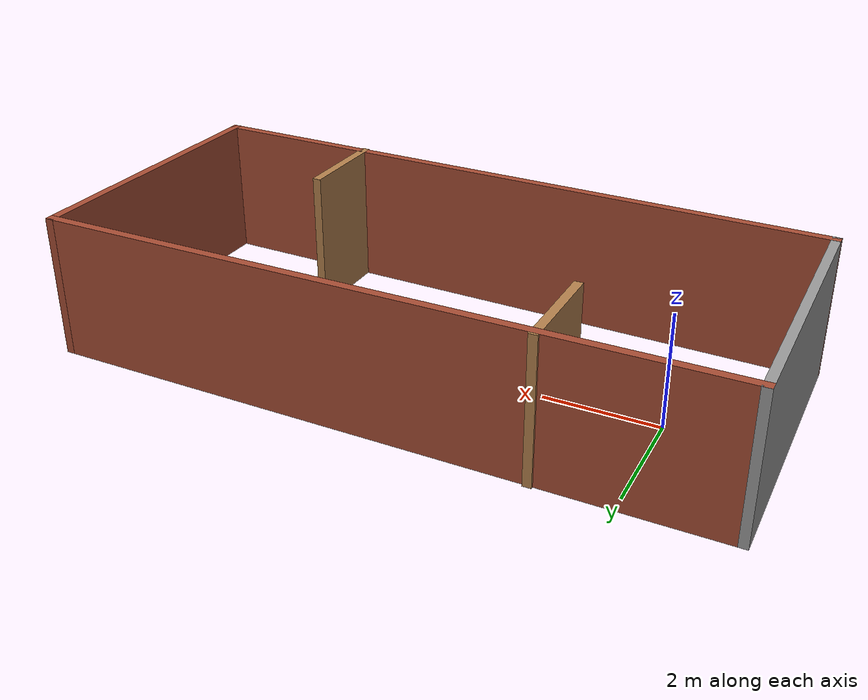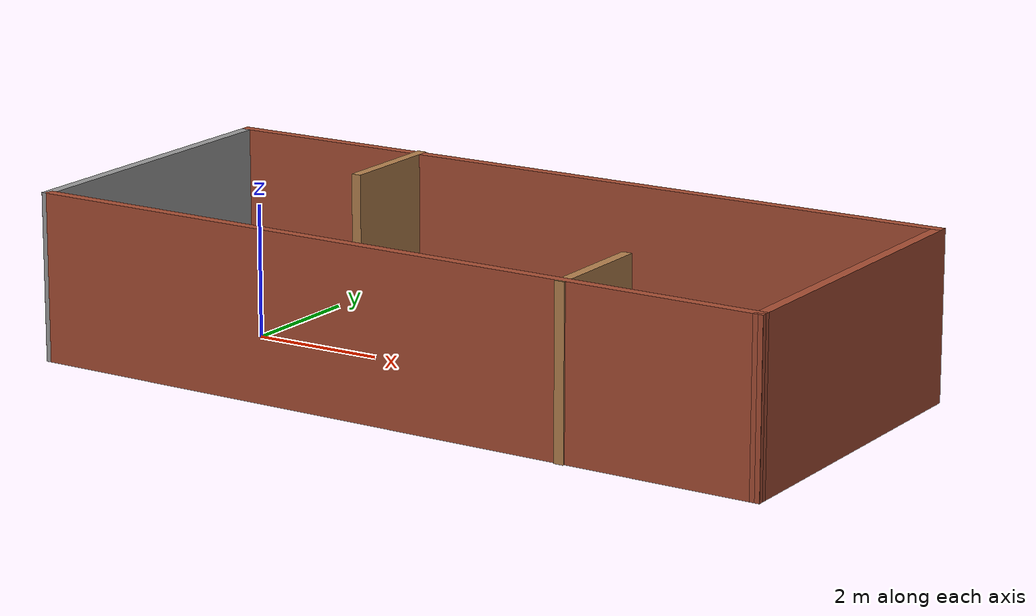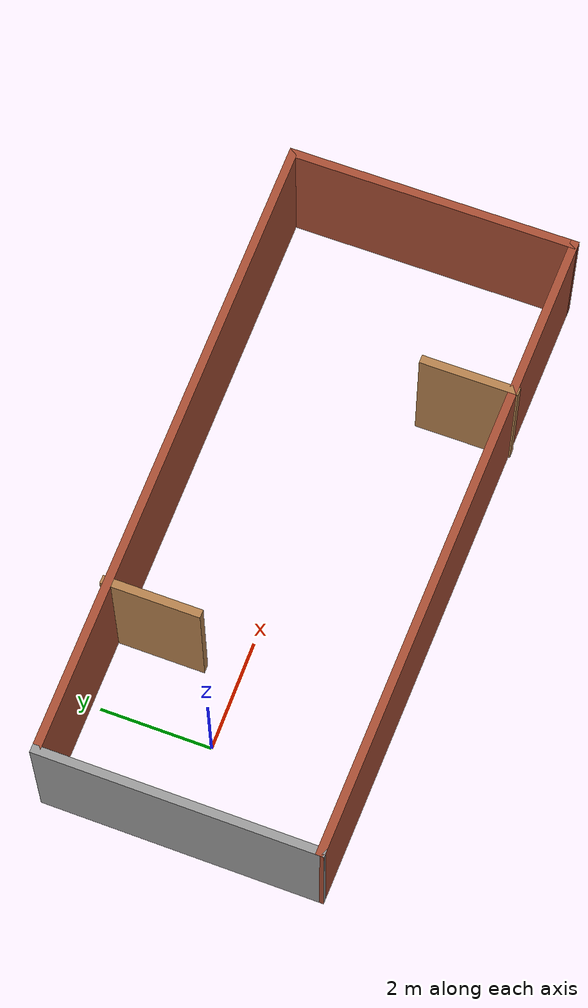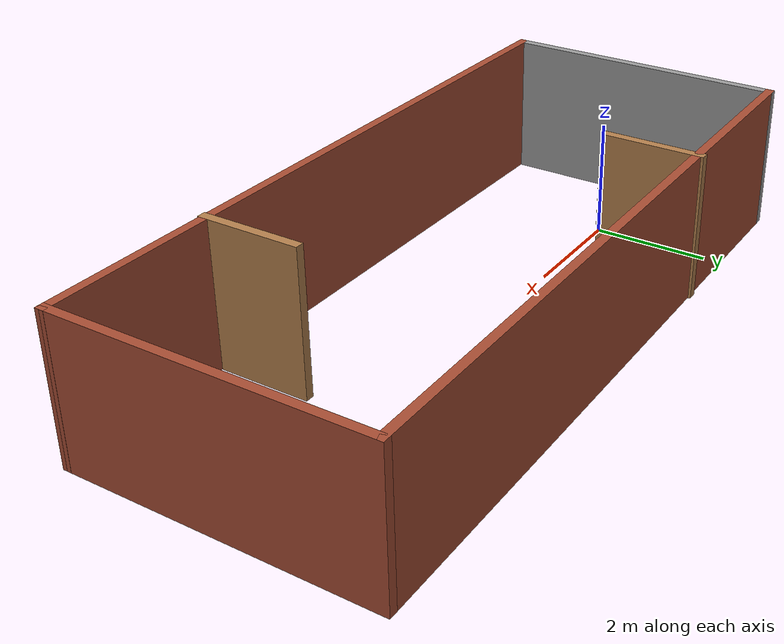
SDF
<?xml version='1.0'?>
<sdf version='1.6'>
  <model name='office_tb3'>
    <pose frame=''>4.01 -0.299402 0 0 -0 0</pose>
    <link name='Wall_0'>
      <collision name='Wall_0_Collision'>
        <geometry>
          <box>
            <size>5 0.15 2.5</size>
          </box>
        </geometry>
        <pose frame=''>0 0 1.25 0 -0 0</pose>
      </collision>
      <visual name='Wall_0_Visual'>
        <pose frame=''>0 0 1.25 0 -0 0</pose>
        <geometry>
          <box>
            <size>5 0.15 2.5</size>
          </box>
        </geometry>
        <material>
          <script>
            <uri>file://media/materials/scripts/gazebo.material</uri>
            <name>Gazebo/Grey</name>
          </script>
          <ambient>1 1 1 1</ambient>
        </material>
        <meta>
          <layer>0</layer>
        </meta>
      </visual>
      <pose frame=''>-5.8 0.104402 0 0 -0 1.5708</pose>
    </link>
    <link name='Wall_1'>
      <collision name='Wall_1_Collision'>
        <geometry>
          <box>
            <size>11.75 0.15 2.5</size>
          </box>
        </geometry>
        <pose frame=''>0 0 1.25 0 -0 0</pose>
      </collision>
      <visual name='Wall_1_Visual'>
        <pose frame=''>0 0 1.25 0 -0 0</pose>
        <geometry>
          <box>
            <size>11.75 0.15 2.5</size>
          </box>
        </geometry>
        <material>
          <script>
            <uri>file://media/materials/scripts/gazebo.material</uri>
            <name>Gazebo/Bricks</name>
          </script>
          <ambient>1 1 1 1</ambient>
        </material>
        <meta>
          <layer>0</layer>
        </meta>
      </visual>
      <pose frame=''>0 2.5294 0 0 -0 0</pose>
    </link>
    <link name='Wall_2'>
      <collision name='Wall_2_Collision'>
        <geometry>
          <box>
            <size>5.25 0.15 2.5</size>
          </box>
        </geometry>
        <pose frame=''>0 0 1.25 0 -0 0</pose>
      </collision>
      <visual name='Wall_2_Visual'>
        <pose frame=''>0 0 1.25 0 -0 0</pose>
        <geometry>
          <box>
            <size>5.25 0.15 2.5</size>
          </box>
        </geometry>
        <material>
          <script>
            <uri>file://media/materials/scripts/gazebo.material</uri>
            <name>Gazebo/Bricks</name>
          </script>
          <ambient>1 1 1 1</ambient>
        </material>
        <meta>
          <layer>0</layer>
        </meta>
      </visual>
      <pose frame=''>5.8 -0.020598 0 0 -0 -1.5708</pose>
    </link>
    <link name='Wall_3'>
      <collision name='Wall_3_Collision'>
        <geometry>
          <box>
            <size>11.7527 0.15 2.5</size>
          </box>
        </geometry>
        <pose frame=''>0 0 1.25 0 -0 0</pose>
      </collision>
      <visual name='Wall_3_Visual'>
        <pose frame=''>0 0 1.25 0 -0 0</pose>
        <geometry>
          <box>
            <size>11.7527 0.15 2.5</size>
          </box>
        </geometry>
        <material>
          <script>
            <uri>file://media/materials/scripts/gazebo.material</uri>
            <name>Gazebo/Bricks</name>
          </script>
          <ambient>1 1 1 1</ambient>
        </material>
        <meta>
          <layer>0</layer>
        </meta>
      </visual>
      <pose frame=''>0 -2.4456 0 0 -0 3.12004</pose>
    </link>
    <link name='Wall_5'>
      <collision name='Wall_5_Collision'>
        <geometry>
          <box>
            <size>1.75 0.15 2.5</size>
          </box>
        </geometry>
        <pose frame=''>0 0 1.25 0 -0 0</pose>
      </collision>
      <visual name='Wall_5_Visual'>
        <pose frame=''>0 0 1.25 0 -0 0</pose>
        <geometry>
          <box>
            <size>1.75 0.15 2.5</size>
          </box>
        </geometry>
        <material>
          <script>
            <uri>file://media/materials/scripts/gazebo.material</uri>
            <name>Gazebo/Wood</name>
          </script>
          <ambient>1 1 1 1</ambient>
        </material>
        <meta>
          <layer>0</layer>
        </meta>
      </visual>
      <pose frame=''>-2.71521 1.7722 0 0 -0 -1.5708</pose>
    </link>
    <link name='Wall_7'>
      <collision name='Wall_7_Collision'>
        <geometry>
          <box>
            <size>1.75 0.15 2.5</size>
          </box>
        </geometry>
        <pose frame=''>0 0 1.25 0 -0 0</pose>
      </collision>
      <visual name='Wall_7_Visual'>
        <pose frame=''>0 0 1.25 0 -0 0</pose>
        <geometry>
          <box>
            <size>1.75 0.15 2.5</size>
          </box>
        </geometry>
        <material>
          <script>
            <uri>file://media/materials/scripts/gazebo.material</uri>
            <name>Gazebo/Wood</name>
          </script>
          <ambient>1 1 1 1</ambient>
        </material>
        <meta>
          <layer>0</layer>
        </meta>
      </visual>
      <pose frame=''>2.85624 -1.73665 0 0 -0 1.5708</pose>
    </link>
    <static>1</static>
  </model>
</sdf>
